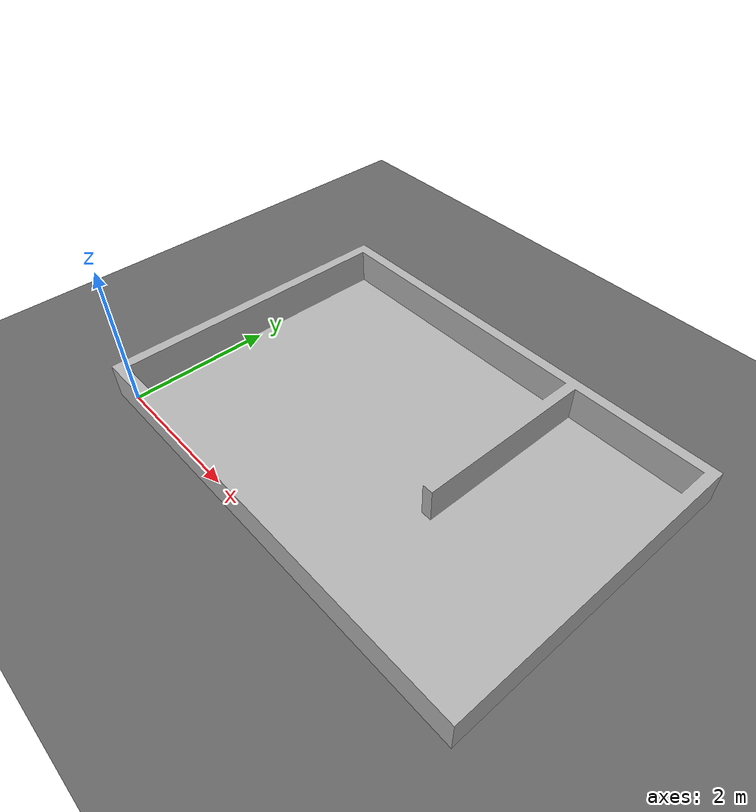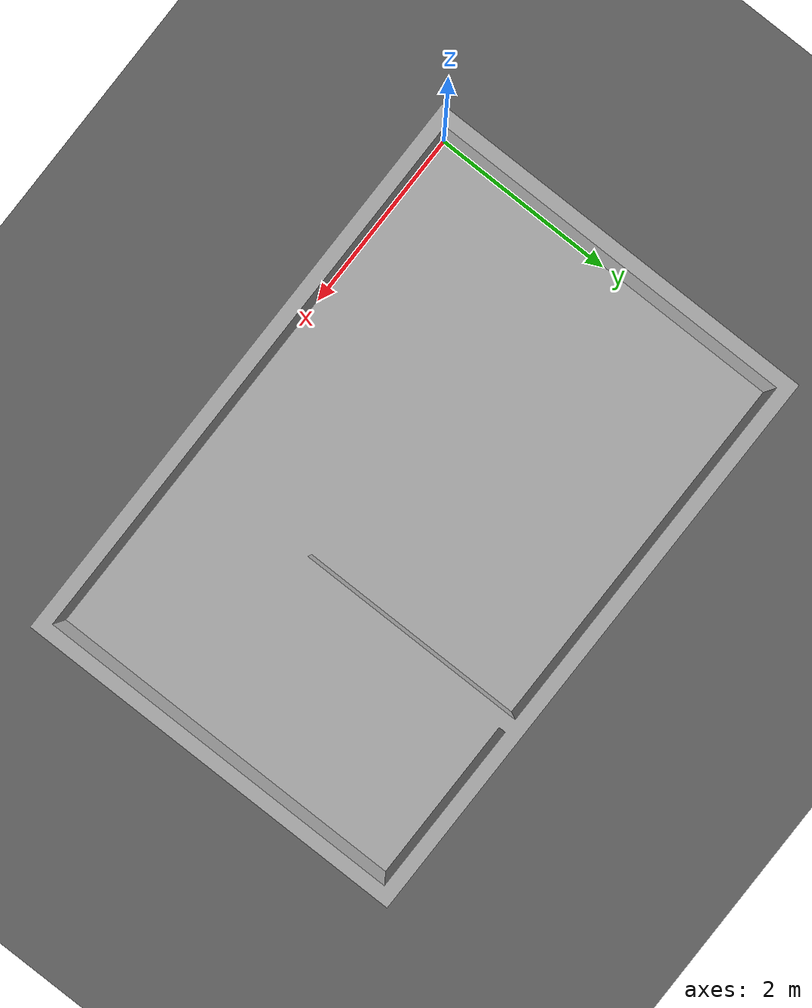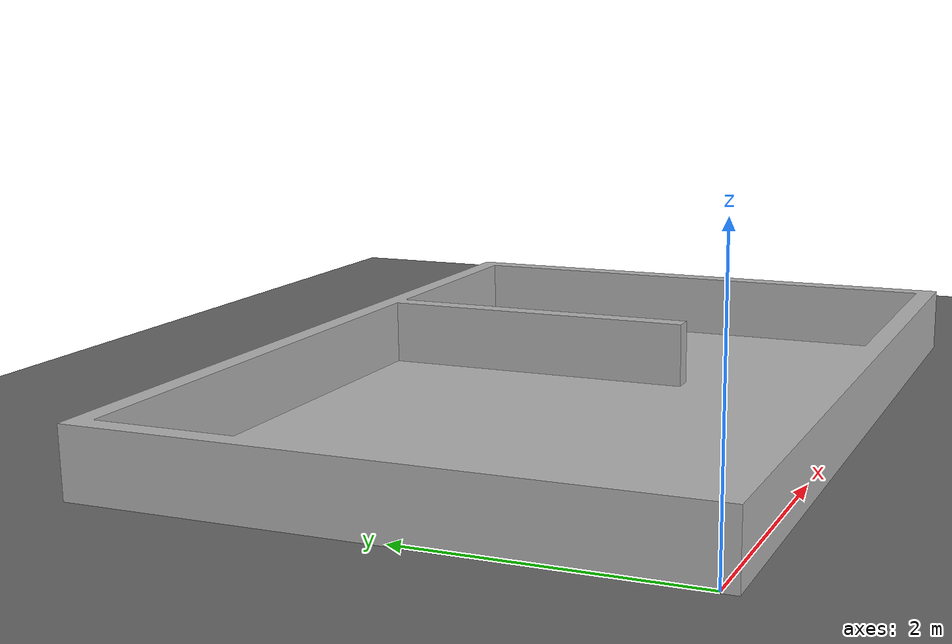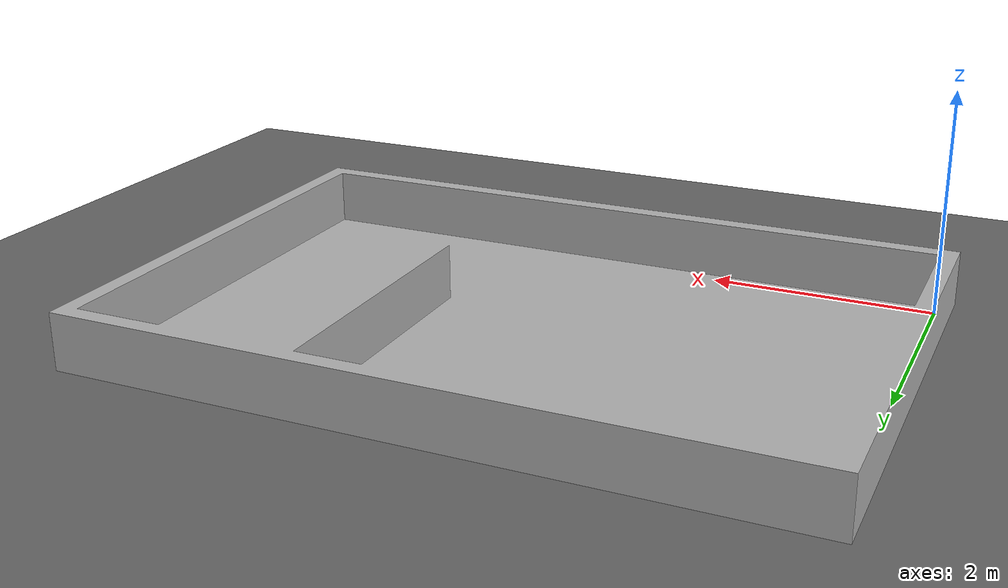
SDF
<sdf version='1.8'>
  <world name='default'>
    <physics name="1ms" type="ignored">
      <max_step_size>0.001</max_step_size>
      <real_time_factor>1.0</real_time_factor>
    </physics>
    <plugin filename="ignition-gazebo-physics-system" name="ignition::gazebo::systems::Physics">
    </plugin>
    <plugin filename="ignition-gazebo-user-commands-system" name="ignition::gazebo::systems::UserCommands">
    </plugin>
    <plugin filename="ignition-gazebo-scene-broadcaster-system" name="ignition::gazebo::systems::SceneBroadcaster">
    </plugin>
    <plugin filename="ignition-gazebo-sensors-system" name="ignition::gazebo::systems::Sensors">
      <render_engine>ogre2</render_engine>
    </plugin>
    <plugin filename="ignition-gazebo-imu-system" name="ignition::gazebo::systems::Imu"/>

    <light name='sun' type='directional'>
      <cast_shadows>0</cast_shadows>
      <pose>0 0 10 0 -0 0</pose>
      <diffuse>0.8 0.8 0.8 1</diffuse>
      <specular>0.2 0.2 0.2 1</specular>
      <attenuation>
        <range>1000</range>
        <constant>0.9</constant>
        <linear>0.01</linear>
        <quadratic>0.001</quadratic>
      </attenuation>
      <direction>-0.5 0.1 -0.9</direction>
      <spot>
        <inner_angle>0</inner_angle>
        <outer_angle>0</outer_angle>
        <falloff>0</falloff>
      </spot>
    </light>
    <model name='ground_plane'>
      <static>true</static>
      <link name='link'>
        <collision name='collision'>
          <geometry>
            <plane>
              <normal>0 0 1</normal>
              <size>100 100</size>
            </plane>
          </geometry>
        </collision>
        <visual name='visual'>
          <cast_shadows>0</cast_shadows>
          <geometry>
            <plane>
              <normal>0 0 1</normal>
              <size>100 100</size>
            </plane>
          </geometry>
          <material>
            <ambient>0.4 0.4 0.4 1</ambient>
            <diffuse>0.4 0.4 0.4 1</diffuse>
            <specular>0.01 0.01 0.01 1</specular>
            <emissive>0 0 0 1</emissive>
          </material>
        </visual>
      </link>
    </model>
    <gravity>0 0 -9.8</gravity>
    <scene>
      <ambient>0.4 0.4 0.4 1</ambient>
      <background>0.7 0.7 0.7 1</background>
      <shadows>1</shadows>
    </scene>
    <wind/>
    <model name='simple'>
      <link name='link_0'>
        <inertial>
          <mass>100</mass>
          <inertia>
            <ixx>0.166667</ixx>
            <ixy>0</ixy>
            <ixz>0</ixz>
            <iyy>0.166667</iyy>
            <iyz>0</iyz>
            <izz>0.166667</izz>
          </inertia>
          <pose>0 0 0 0 -0 0</pose>
        </inertial>
        <pose>0 0 0 1.57 -0 0</pose>
        <gravity>1</gravity>
        <self_collide>0</self_collide>
        <kinematic>0</kinematic>
        <visual name='visual'>
          <pose>0 0 0 0 -0 0</pose>
          <geometry>
            <mesh>
              <uri>../models/simple.stl</uri>
              <scale>0.001 0.001 0.001</scale>
            </mesh>
          </geometry>
          <material>
            <lighting>1</lighting>
            <shader type='pixel'>
              <normal_map>__default__</normal_map>
            </shader>
            <ambient>0.3 0.3 0.3 1</ambient>
            <diffuse>0.7 0.7 0.7 1</diffuse>
            <specular>0.01 0.01 0.01 1</specular>
            <emissive>0 0 0 1</emissive>
          </material>
          <transparency>0</transparency>
          <cast_shadows>1</cast_shadows>
        </visual>
        <collision name='collision'>
          <pose>0 0 0 0 -0 0</pose>
          <geometry>
            <mesh>
              <uri>../models/simple.stl</uri>
              <scale>0.001 0.001 0.001</scale>
            </mesh>
          </geometry>
        </collision>
      </link>
      <static>1</static>
      <pose>0 0 0 0 0 0</pose>
    </model>
  </world>
</sdf>
